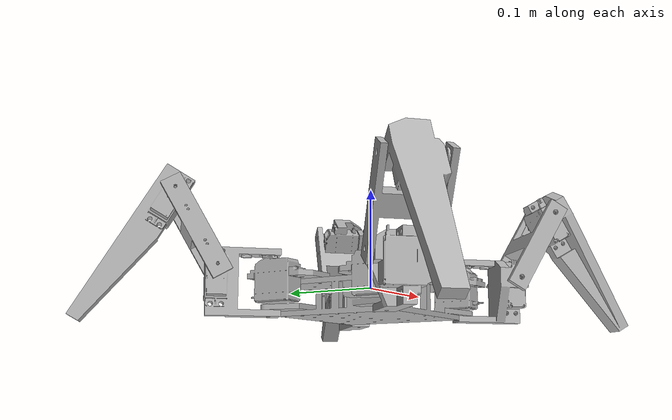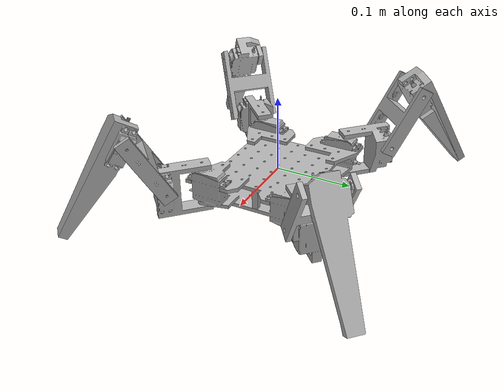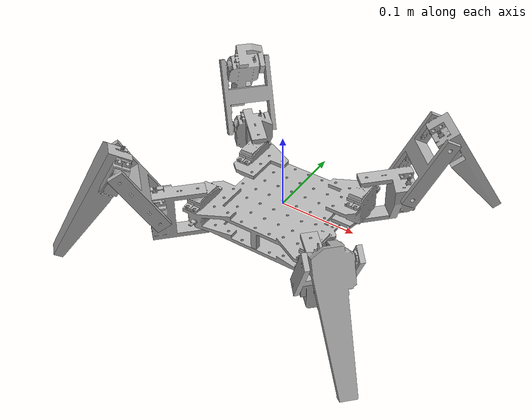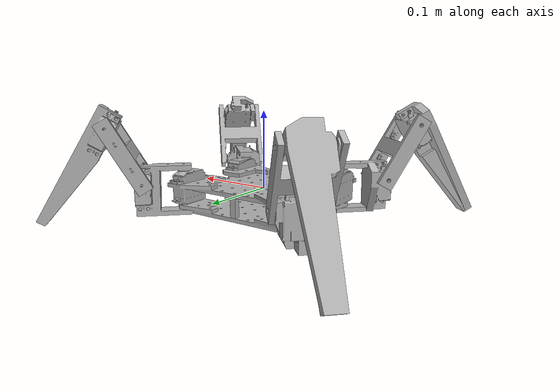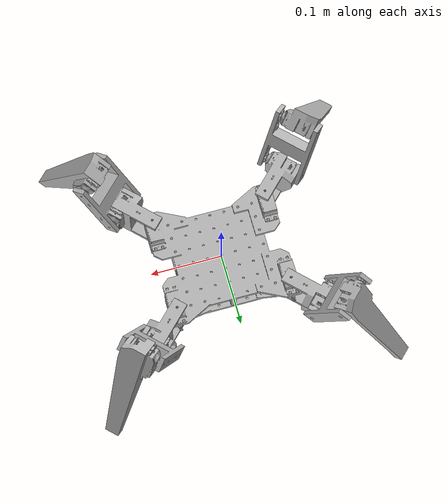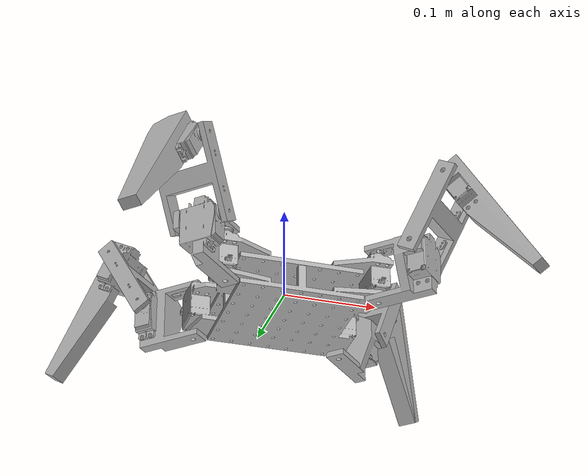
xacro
<?xml version="1.0" ?>
<robot name="SpdrBot" xmlns:xacro="http://www.ros.org/wiki/xacro">

<xacro:include filename="$(find SpdrBot_description)/urdf/materials.xacro" />
<xacro:include filename="$(find SpdrBot_description)/urdf/SpdrBot.trans" />
<xacro:include filename="$(find SpdrBot_description)/urdf/SpdrBot.gazebo" />
<link name="base_link">
  <inertial>
    <origin xyz="4.0195046385725887e-10 -9.5697371012907e-08 -0.005922558162110875" rpy="0 0 0"/>
    <mass value="2.886187908245162"/>
    <inertia ixx="0.007306" iyy="0.011523" izz="0.017472" ixy="-0.0" iyz="-0.0" ixz="-0.0"/>
  </inertial>
  <visual>
    <origin xyz="0 0 0" rpy="0 0 0"/>
    <geometry>
      <mesh filename="package://SpdrBot_description/meshes/base_link.stl" scale="0.001 0.001 0.001"/>
    </geometry>
    <material name="silver"/>
  </visual>
  <collision>
    <origin xyz="0 0 0" rpy="0 0 0"/>
    <geometry>
      <mesh filename="package://SpdrBot_description/meshes/base_link.stl" scale="0.001 0.001 0.001"/>
    </geometry>
  </collision>
</link>

<link name="arm_a_4_1">
  <inertial>
    <origin xyz="-0.029329716066216552 -0.02813594305937389 -0.02511915559887622" rpy="0 0 0"/>
    <mass value="0.5428876729051186"/>
    <inertia ixx="0.000279" iyy="0.000264" izz="0.00019" ixy="-3e-05" iyz="-1e-06" ixz="1e-05"/>
  </inertial>
  <visual>
    <origin xyz="0.0802 0.0649 -0.0278" rpy="0 0 0"/>
    <geometry>
      <mesh filename="package://SpdrBot_description/meshes/arm_a_4_1.stl" scale="0.001 0.001 0.001"/>
    </geometry>
    <material name="silver"/>
  </visual>
  <collision>
    <origin xyz="0.0802 0.0649 -0.0278" rpy="0 0 0"/>
    <geometry>
      <mesh filename="package://SpdrBot_description/meshes/arm_a_4_1.stl" scale="0.001 0.001 0.001"/>
    </geometry>
  </collision>
</link>

<link name="arm_b_4_1">
  <inertial>
    <origin xyz="-0.033307010104674115 0.005023359993758844 0.034641029689620795" rpy="0 0 0"/>
    <mass value="0.3492283307966938"/>
    <inertia ixx="0.000242" iyy="0.000242" izz="0.000243" ixy="7.3e-05" iyz="4.5e-05" ixz="4.5e-05"/>
  </inertial>
  <visual>
    <origin xyz="0.096181 0.120196 -0.0137" rpy="0 0 0"/>
    <geometry>
      <mesh filename="package://SpdrBot_description/meshes/arm_b_4_1.stl" scale="0.001 0.001 0.001"/>
    </geometry>
    <material name="silver"/>
  </visual>
  <collision>
    <origin xyz="0.096181 0.120196 -0.0137" rpy="0 0 0"/>
    <geometry>
      <mesh filename="package://SpdrBot_description/meshes/arm_b_4_1.stl" scale="0.001 0.001 0.001"/>
    </geometry>
  </collision>
</link>

<link name="arm_c_4_1">
  <inertial>
    <origin xyz="-0.04092049433517593 0.000606221473381241 -0.0346865874039218" rpy="0 0 0"/>
    <mass value="0.8577978208262359"/>
    <inertia ixx="0.001437" iyy="0.001457" izz="0.000621" ixy="-0.000224" iyz="-0.00052" ixz="-0.000499"/>
  </inertial>
  <visual>
    <origin xyz="0.124465 0.14848 -0.082982" rpy="0 0 0"/>
    <geometry>
      <mesh filename="package://SpdrBot_description/meshes/arm_c_4_1.stl" scale="0.001 0.001 0.001"/>
    </geometry>
    <material name="silver"/>
  </visual>
  <collision>
    <origin xyz="0.124465 0.14848 -0.082982" rpy="0 0 0"/>
    <geometry>
      <mesh filename="package://SpdrBot_description/meshes/arm_c_4_1.stl" scale="0.001 0.001 0.001"/>
    </geometry>
  </collision>
</link>

<link name="arm_a_1_1">
  <inertial>
    <origin xyz="0.028135943068837058 -0.0293297160902298 -0.02511915559633373" rpy="0 0 0"/>
    <mass value="0.5428876729051647"/>
    <inertia ixx="0.000264" iyy="0.000279" izz="0.00019" ixy="3e-05" iyz="1e-05" ixz="1e-06"/>
  </inertial>
  <visual>
    <origin xyz="-0.0802 0.0649 -0.0278" rpy="0 0 0"/>
    <geometry>
      <mesh filename="package://SpdrBot_description/meshes/arm_a_1_1.stl" scale="0.001 0.001 0.001"/>
    </geometry>
    <material name="silver"/>
  </visual>
  <collision>
    <origin xyz="-0.0802 0.0649 -0.0278" rpy="0 0 0"/>
    <geometry>
      <mesh filename="package://SpdrBot_description/meshes/arm_a_1_1.stl" scale="0.001 0.001 0.001"/>
    </geometry>
  </collision>
</link>

<link name="arm_b_1_1">
  <inertial>
    <origin xyz="-0.005023356374733862 -0.03330700808569774 0.03464102045551891" rpy="0 0 0"/>
    <mass value="0.34922835365489313"/>
    <inertia ixx="0.000242" iyy="0.000242" izz="0.000243" ixy="-7.3e-05" iyz="4.5e-05" ixz="-4.5e-05"/>
  </inertial>
  <visual>
    <origin xyz="-0.135496 0.080881 -0.0137" rpy="0 0 0"/>
    <geometry>
      <mesh filename="package://SpdrBot_description/meshes/arm_b_1_1.stl" scale="0.001 0.001 0.001"/>
    </geometry>
    <material name="silver"/>
  </visual>
  <collision>
    <origin xyz="-0.135496 0.080881 -0.0137" rpy="0 0 0"/>
    <geometry>
      <mesh filename="package://SpdrBot_description/meshes/arm_b_1_1.stl" scale="0.001 0.001 0.001"/>
    </geometry>
  </collision>
</link>

<link name="arm_c_1_1">
  <inertial>
    <origin xyz="-0.0006062214733014437 -0.040920494335313015 -0.03468658740391919" rpy="0 0 0"/>
    <mass value="0.8577978208262385"/>
    <inertia ixx="0.001457" iyy="0.001437" izz="0.000621" ixy="0.000224" iyz="-0.000499" ixz="0.00052"/>
  </inertial>
  <visual>
    <origin xyz="-0.16378 0.109165 -0.082982" rpy="0 0 0"/>
    <geometry>
      <mesh filename="package://SpdrBot_description/meshes/arm_c_1_1.stl" scale="0.001 0.001 0.001"/>
    </geometry>
    <material name="silver"/>
  </visual>
  <collision>
    <origin xyz="-0.16378 0.109165 -0.082982" rpy="0 0 0"/>
    <geometry>
      <mesh filename="package://SpdrBot_description/meshes/arm_c_1_1.stl" scale="0.001 0.001 0.001"/>
    </geometry>
  </collision>
</link>

<link name="arm_a_2_1">
  <inertial>
    <origin xyz="0.02932971764893115 0.028135944651754966 -0.025119158751981622" rpy="0 0 0"/>
    <mass value="0.5428876729051773"/>
    <inertia ixx="0.000279" iyy="0.000264" izz="0.00019" ixy="-3e-05" iyz="1e-06" ixz="-1e-05"/>
  </inertial>
  <visual>
    <origin xyz="-0.0802 -0.0649 -0.0278" rpy="0 0 0"/>
    <geometry>
      <mesh filename="package://SpdrBot_description/meshes/arm_a_2_1.stl" scale="0.001 0.001 0.001"/>
    </geometry>
    <material name="silver"/>
  </visual>
  <collision>
    <origin xyz="-0.0802 -0.0649 -0.0278" rpy="0 0 0"/>
    <geometry>
      <mesh filename="package://SpdrBot_description/meshes/arm_a_2_1.stl" scale="0.001 0.001 0.001"/>
    </geometry>
  </collision>
</link>

<link name="arm_b_2_1">
  <inertial>
    <origin xyz="0.033306991137202493 -0.005023373318229579 0.034641011840133185" rpy="0 0 0"/>
    <mass value="0.3492283536549301"/>
    <inertia ixx="0.000242" iyy="0.000242" izz="0.000243" ixy="7.3e-05" iyz="-4.5e-05" ixz="-4.5e-05"/>
  </inertial>
  <visual>
    <origin xyz="-0.096181 -0.120196 -0.0137" rpy="0 0 0"/>
    <geometry>
      <mesh filename="package://SpdrBot_description/meshes/arm_b_2_1.stl" scale="0.001 0.001 0.001"/>
    </geometry>
    <material name="silver"/>
  </visual>
  <collision>
    <origin xyz="-0.096181 -0.120196 -0.0137" rpy="0 0 0"/>
    <geometry>
      <mesh filename="package://SpdrBot_description/meshes/arm_b_2_1.stl" scale="0.001 0.001 0.001"/>
    </geometry>
  </collision>
</link>

<link name="arm_c_2_1">
  <inertial>
    <origin xyz="0.04092049563456594 -0.0006062201740217599 -0.034686586023032526" rpy="0 0 0"/>
    <mass value="0.8577978208264597"/>
    <inertia ixx="0.001437" iyy="0.001457" izz="0.000621" ixy="-0.000224" iyz="0.00052" ixz="0.000499"/>
  </inertial>
  <visual>
    <origin xyz="-0.124465 -0.14848 -0.082982" rpy="0 0 0"/>
    <geometry>
      <mesh filename="package://SpdrBot_description/meshes/arm_c_2_1.stl" scale="0.001 0.001 0.001"/>
    </geometry>
    <material name="silver"/>
  </visual>
  <collision>
    <origin xyz="-0.124465 -0.14848 -0.082982" rpy="0 0 0"/>
    <geometry>
      <mesh filename="package://SpdrBot_description/meshes/arm_c_2_1.stl" scale="0.001 0.001 0.001"/>
    </geometry>
  </collision>
</link>

<link name="arm_a_3_1">
  <inertial>
    <origin xyz="-0.0281359446247115 0.029329717652243237 -0.025119158739025944" rpy="0 0 0"/>
    <mass value="0.5428876729051227"/>
    <inertia ixx="0.000264" iyy="0.000279" izz="0.00019" ixy="3e-05" iyz="-1e-05" ixz="-1e-06"/>
  </inertial>
  <visual>
    <origin xyz="0.0802 -0.0649 -0.0278" rpy="0 0 0"/>
    <geometry>
      <mesh filename="package://SpdrBot_description/meshes/arm_a_3_1.stl" scale="0.001 0.001 0.001"/>
    </geometry>
    <material name="silver"/>
  </visual>
  <collision>
    <origin xyz="0.0802 -0.0649 -0.0278" rpy="0 0 0"/>
    <geometry>
      <mesh filename="package://SpdrBot_description/meshes/arm_a_3_1.stl" scale="0.001 0.001 0.001"/>
    </geometry>
  </collision>
</link>

<link name="arm_b_3_1">
  <inertial>
    <origin xyz="0.0050233755625489485 0.033306994569915815 0.0346410025469837" rpy="0 0 0"/>
    <mass value="0.34922833079669513"/>
    <inertia ixx="0.000242" iyy="0.000242" izz="0.000243" ixy="-7.3e-05" iyz="-4.5e-05" ixz="4.5e-05"/>
  </inertial>
  <visual>
    <origin xyz="0.135496 -0.080881 -0.0137" rpy="0 0 0"/>
    <geometry>
      <mesh filename="package://SpdrBot_description/meshes/arm_b_3_1.stl" scale="0.001 0.001 0.001"/>
    </geometry>
    <material name="silver"/>
  </visual>
  <collision>
    <origin xyz="0.135496 -0.080881 -0.0137" rpy="0 0 0"/>
    <geometry>
      <mesh filename="package://SpdrBot_description/meshes/arm_b_3_1.stl" scale="0.001 0.001 0.001"/>
    </geometry>
  </collision>
</link>

<link name="arm_c_3_1">
  <inertial>
    <origin xyz="0.0006062201741630358 0.04092049563447801 -0.034686586023029604" rpy="0 0 0"/>
    <mass value="0.8577978208264664"/>
    <inertia ixx="0.001457" iyy="0.001437" izz="0.000621" ixy="0.000224" iyz="0.000499" ixz="-0.00052"/>
  </inertial>
  <visual>
    <origin xyz="0.16378 -0.109165 -0.082982" rpy="0 0 0"/>
    <geometry>
      <mesh filename="package://SpdrBot_description/meshes/arm_c_3_1.stl" scale="0.001 0.001 0.001"/>
    </geometry>
    <material name="silver"/>
  </visual>
  <collision>
    <origin xyz="0.16378 -0.109165 -0.082982" rpy="0 0 0"/>
    <geometry>
      <mesh filename="package://SpdrBot_description/meshes/arm_c_3_1.stl" scale="0.001 0.001 0.001"/>
    </geometry>
  </collision>
</link>

<joint name="Revolute 110" type="continuous">
  <origin xyz="-0.0802 -0.0649 0.0278" rpy="0 0 0"/>
  <parent link="base_link"/>
  <child link="arm_a_4_1"/>
  <axis xyz="0.0 -0.0 1.0"/>
</joint>

<joint name="Revolute 111" type="continuous">
  <origin xyz="-0.015981 -0.055296 -0.0141" rpy="0 0 0"/>
  <parent link="arm_a_4_1"/>
  <child link="arm_b_4_1"/>
  <axis xyz="0.707107 -0.707107 0.0"/>
</joint>

<joint name="Revolute 112" type="continuous">
  <origin xyz="-0.028284 -0.028284 0.069282" rpy="0 0 0"/>
  <parent link="arm_b_4_1"/>
  <child link="arm_c_4_1"/>
  <axis xyz="-0.707107 0.707107 -0.0"/>
</joint>

<joint name="Revolute 113" type="continuous">
  <origin xyz="0.0802 -0.0649 0.0278" rpy="0 0 0"/>
  <parent link="base_link"/>
  <child link="arm_a_1_1"/>
  <axis xyz="0.0 -0.0 1.0"/>
</joint>

<joint name="Revolute 114" type="continuous">
  <origin xyz="0.055296 -0.015981 -0.0141" rpy="0 0 0"/>
  <parent link="arm_a_1_1"/>
  <child link="arm_b_1_1"/>
  <axis xyz="0.707107 0.707107 0.0"/>
</joint>

<joint name="Revolute 115" type="continuous">
  <origin xyz="0.028284 -0.028284 0.069282" rpy="0 0 0"/>
  <parent link="arm_b_1_1"/>
  <child link="arm_c_1_1"/>
  <axis xyz="-0.707107 -0.707107 -0.0"/>
</joint>

<joint name="Revolute 116" type="continuous">
  <origin xyz="0.0802 0.0649 0.0278" rpy="0 0 0"/>
  <parent link="base_link"/>
  <child link="arm_a_2_1"/>
  <axis xyz="-0.0 0.0 1.0"/>
</joint>

<joint name="Revolute 117" type="continuous">
  <origin xyz="0.015981 0.055296 -0.0141" rpy="0 0 0"/>
  <parent link="arm_a_2_1"/>
  <child link="arm_b_2_1"/>
  <axis xyz="-0.707107 0.707107 -0.0"/>
</joint>

<joint name="Revolute 118" type="continuous">
  <origin xyz="0.028284 0.028284 0.069282" rpy="0 0 0"/>
  <parent link="arm_b_2_1"/>
  <child link="arm_c_2_1"/>
  <axis xyz="0.707107 -0.707107 -0.0"/>
</joint>

<joint name="Revolute 119" type="continuous">
  <origin xyz="-0.0802 0.0649 0.0278" rpy="0 0 0"/>
  <parent link="base_link"/>
  <child link="arm_a_3_1"/>
  <axis xyz="-0.0 0.0 1.0"/>
</joint>

<joint name="Revolute 120" type="continuous">
  <origin xyz="-0.055296 0.015981 -0.0141" rpy="0 0 0"/>
  <parent link="arm_a_3_1"/>
  <child link="arm_b_3_1"/>
  <axis xyz="-0.707107 -0.707107 0.0"/>
</joint>

<joint name="Revolute 121" type="continuous">
  <origin xyz="-0.028284 0.028284 0.069282" rpy="0 0 0"/>
  <parent link="arm_b_3_1"/>
  <child link="arm_c_3_1"/>
  <axis xyz="0.707107 0.707107 -0.0"/>
</joint>

</robot>

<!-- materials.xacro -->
<robot name="SpdrBot" xmlns:xacro="http://www.ros.org/wiki/xacro" >

<material name="silver">
  <color rgba="0.700 0.700 0.700 1.000"/>
</material>

</robot>

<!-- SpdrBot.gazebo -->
<robot name="SpdrBot" xmlns:xacro="http://www.ros.org/wiki/xacro" >

<xacro:property name="body_color" value="Gazebo/Silver" />

<gazebo>
  <plugin name="control" filename="libgazebo_ros_control.so"/>
</gazebo>
<gazebo reference="base_link">
  <material>${body_color}</material>
  <mu1>0.2</mu1>
  <mu2>0.2</mu2>
  <selfCollide>true</selfCollide>
  <gravity>true</gravity>
</gazebo>

<gazebo reference="arm_a_4_1">
  <material>${body_color}</material>
  <mu1>0.2</mu1>
  <mu2>0.2</mu2>
  <selfCollide>true</selfCollide>
</gazebo>

<gazebo reference="arm_b_4_1">
  <material>${body_color}</material>
  <mu1>0.2</mu1>
  <mu2>0.2</mu2>
  <selfCollide>true</selfCollide>
</gazebo>

<gazebo reference="arm_c_4_1">
  <material>${body_color}</material>
  <mu1>0.2</mu1>
  <mu2>0.2</mu2>
  <selfCollide>true</selfCollide>
</gazebo>

<gazebo reference="arm_a_1_1">
  <material>${body_color}</material>
  <mu1>0.2</mu1>
  <mu2>0.2</mu2>
  <selfCollide>true</selfCollide>
</gazebo>

<gazebo reference="arm_b_1_1">
  <material>${body_color}</material>
  <mu1>0.2</mu1>
  <mu2>0.2</mu2>
  <selfCollide>true</selfCollide>
</gazebo>

<gazebo reference="arm_c_1_1">
  <material>${body_color}</material>
  <mu1>0.2</mu1>
  <mu2>0.2</mu2>
  <selfCollide>true</selfCollide>
</gazebo>

<gazebo reference="arm_a_2_1">
  <material>${body_color}</material>
  <mu1>0.2</mu1>
  <mu2>0.2</mu2>
  <selfCollide>true</selfCollide>
</gazebo>

<gazebo reference="arm_b_2_1">
  <material>${body_color}</material>
  <mu1>0.2</mu1>
  <mu2>0.2</mu2>
  <selfCollide>true</selfCollide>
</gazebo>

<gazebo reference="arm_c_2_1">
  <material>${body_color}</material>
  <mu1>0.2</mu1>
  <mu2>0.2</mu2>
  <selfCollide>true</selfCollide>
</gazebo>

<gazebo reference="arm_a_3_1">
  <material>${body_color}</material>
  <mu1>0.2</mu1>
  <mu2>0.2</mu2>
  <selfCollide>true</selfCollide>
</gazebo>

<gazebo reference="arm_b_3_1">
  <material>${body_color}</material>
  <mu1>0.2</mu1>
  <mu2>0.2</mu2>
  <selfCollide>true</selfCollide>
</gazebo>

<gazebo reference="arm_c_3_1">
  <material>${body_color}</material>
  <mu1>0.2</mu1>
  <mu2>0.2</mu2>
  <selfCollide>true</selfCollide>
</gazebo>

</robot>
